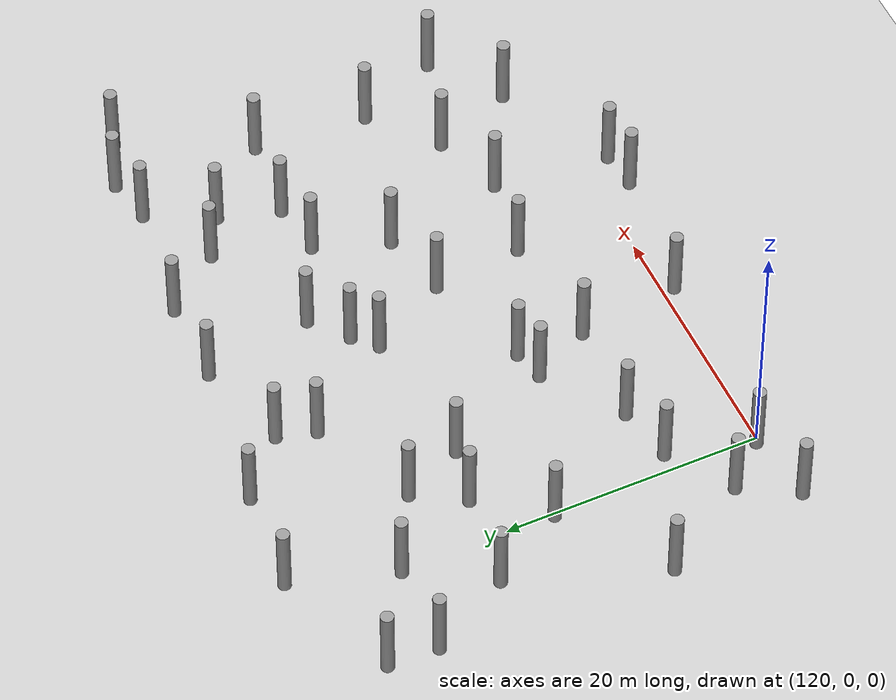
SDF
<sdf version="1.5">
 <world name="circle">
  <model name="ground">
   <static>1</static>
   <link name="link">
    <collision name="collision">
     <geometry><plane><normal>0 0 1</normal><size>100 100</size></plane></geometry>
     <surface><friction><ode><mu>100</mu><mu2>50</mu2></ode></friction></surface>
    </collision>
    <visual name="visual">
     <cast_shadows>0</cast_shadows>
     <geometry><plane><normal>0 0 1</normal><size>100 100</size></plane></geometry>
     <material>
      <script><uri>file://media/materials/scripts/gazebo.material</uri><name>Gazebo/Grey</name></script>
     </material>
    </visual>
    <velocity_decay><linear>0</linear><angular>0</angular></velocity_decay>
   </link>
  </model>
  <model name="unit_cylinder_186">
   <pose>114.04623257 -0.670646599404 3 3e-06 4e-06 -0</pose>
   <static>1</static>
   <self_collide>1</self_collide>
   <link name="link">
    <inertial>
     <mass>1</mass>
     <inertia><ixx>0.145833</ixx><ixy>0</ixy><ixz>0</ixz><iyy>0.145833</iyy><iyz>0</iyz><izz>0.125</izz></inertia>
    </inertial>
    <collision name="collision">
     <geometry><cylinder><radius>0.5</radius><length>6</length></cylinder></geometry>
    </collision>
    <visual name="visual">
     <geometry><cylinder><radius>0.5</radius><length>6</length></cylinder></geometry>
     <material>
      <script><name>Gazebo/Grey</name><uri>file://media/materials/scripts/gazebo.material</uri></script>
     </material>
    </visual>
    <collision name="cyl_collision">
     <geometry><cylinder><radius>0.5</radius><length>6</length></cylinder></geometry>
    </collision>
    <sensor name="my_contact" type="contact">
     <contact><collision>cyl_collision</collision></contact>
     <update_rate>5</update_rate>
    </sensor>
   </link>
  </model>
  <model name="unit_cylinder_187">
   <pose>116.504684851 3.52285899328 3 3e-06 4e-06 -0</pose>
   <static>1</static>
   <self_collide>1</self_collide>
   <link name="link">
    <inertial>
     <mass>1</mass>
     <inertia><ixx>0.145833</ixx><ixy>0</ixy><ixz>0</ixz><iyy>0.145833</iyy><iyz>0</iyz><izz>0.125</izz></inertia>
    </inertial>
    <collision name="collision">
     <geometry><cylinder><radius>0.5</radius><length>6</length></cylinder></geometry>
    </collision>
    <visual name="visual">
     <geometry><cylinder><radius>0.5</radius><length>6</length></cylinder></geometry>
     <material>
      <script><name>Gazebo/Grey</name><uri>file://media/materials/scripts/gazebo.material</uri></script>
     </material>
    </visual>
    <collision name="cyl_collision">
     <geometry><cylinder><radius>0.5</radius><length>6</length></cylinder></geometry>
    </collision>
    <sensor name="my_contact" type="contact">
     <contact><collision>cyl_collision</collision></contact>
     <update_rate>5</update_rate>
    </sensor>
   </link>
  </model>
  <model name="unit_cylinder_188">
   <pose>111.8481659 10.6977558136 3 3e-06 4e-06 -0</pose>
   <static>1</static>
   <self_collide>1</self_collide>
   <link name="link">
    <inertial>
     <mass>1</mass>
     <inertia><ixx>0.145833</ixx><ixy>0</ixy><ixz>0</ixz><iyy>0.145833</iyy><iyz>0</iyz><izz>0.125</izz></inertia>
    </inertial>
    <collision name="collision">
     <geometry><cylinder><radius>0.5</radius><length>6</length></cylinder></geometry>
    </collision>
    <visual name="visual">
     <geometry><cylinder><radius>0.5</radius><length>6</length></cylinder></geometry>
     <material>
      <script><name>Gazebo/Grey</name><uri>file://media/materials/scripts/gazebo.material</uri></script>
     </material>
    </visual>
    <collision name="cyl_collision">
     <geometry><cylinder><radius>0.5</radius><length>6</length></cylinder></geometry>
    </collision>
    <sensor name="my_contact" type="contact">
     <contact><collision>cyl_collision</collision></contact>
     <update_rate>5</update_rate>
    </sensor>
   </link>
  </model>
  <model name="unit_cylinder_189">
   <pose>116.131925766 22.355051356 3 3e-06 4e-06 -0</pose>
   <static>1</static>
   <self_collide>1</self_collide>
   <link name="link">
    <inertial>
     <mass>1</mass>
     <inertia><ixx>0.145833</ixx><ixy>0</ixy><ixz>0</ixz><iyy>0.145833</iyy><iyz>0</iyz><izz>0.125</izz></inertia>
    </inertial>
    <collision name="collision">
     <geometry><cylinder><radius>0.5</radius><length>6</length></cylinder></geometry>
    </collision>
    <visual name="visual">
     <geometry><cylinder><radius>0.5</radius><length>6</length></cylinder></geometry>
     <material>
      <script><name>Gazebo/Grey</name><uri>file://media/materials/scripts/gazebo.material</uri></script>
     </material>
    </visual>
    <collision name="cyl_collision">
     <geometry><cylinder><radius>0.5</radius><length>6</length></cylinder></geometry>
    </collision>
    <sensor name="my_contact" type="contact">
     <contact><collision>cyl_collision</collision></contact>
     <update_rate>5</update_rate>
    </sensor>
   </link>
  </model>
  <model name="unit_cylinder_190">
   <pose>112.690546598 28.7296796756 3 3e-06 4e-06 -0</pose>
   <static>1</static>
   <self_collide>1</self_collide>
   <link name="link">
    <inertial>
     <mass>1</mass>
     <inertia><ixx>0.145833</ixx><ixy>0</ixy><ixz>0</ixz><iyy>0.145833</iyy><iyz>0</iyz><izz>0.125</izz></inertia>
    </inertial>
    <collision name="collision">
     <geometry><cylinder><radius>0.5</radius><length>6</length></cylinder></geometry>
    </collision>
    <visual name="visual">
     <geometry><cylinder><radius>0.5</radius><length>6</length></cylinder></geometry>
     <material>
      <script><name>Gazebo/Grey</name><uri>file://media/materials/scripts/gazebo.material</uri></script>
     </material>
    </visual>
    <collision name="cyl_collision">
     <geometry><cylinder><radius>0.5</radius><length>6</length></cylinder></geometry>
    </collision>
    <sensor name="my_contact" type="contact">
     <contact><collision>cyl_collision</collision></contact>
     <update_rate>5</update_rate>
    </sensor>
   </link>
  </model>
  <model name="unit_cylinder_191">
   <pose>112.849366053 32.6587938251 3 3e-06 4e-06 -0</pose>
   <static>1</static>
   <self_collide>1</self_collide>
   <link name="link">
    <inertial>
     <mass>1</mass>
     <inertia><ixx>0.145833</ixx><ixy>0</ixy><ixz>0</ixz><iyy>0.145833</iyy><iyz>0</iyz><izz>0.125</izz></inertia>
    </inertial>
    <collision name="collision">
     <geometry><cylinder><radius>0.5</radius><length>6</length></cylinder></geometry>
    </collision>
    <visual name="visual">
     <geometry><cylinder><radius>0.5</radius><length>6</length></cylinder></geometry>
     <material>
      <script><name>Gazebo/Grey</name><uri>file://media/materials/scripts/gazebo.material</uri></script>
     </material>
    </visual>
    <collision name="cyl_collision">
     <geometry><cylinder><radius>0.5</radius><length>6</length></cylinder></geometry>
    </collision>
    <sensor name="my_contact" type="contact">
     <contact><collision>cyl_collision</collision></contact>
     <update_rate>5</update_rate>
    </sensor>
   </link>
  </model>
  <model name="unit_cylinder_198">
   <pose>119.573769569 0.232116422597 3 3e-06 4e-06 -0</pose>
   <static>1</static>
   <self_collide>1</self_collide>
   <link name="link">
    <inertial>
     <mass>1</mass>
     <inertia><ixx>0.145833</ixx><ixy>0</ixy><ixz>0</ixz><iyy>0.145833</iyy><iyz>0</iyz><izz>0.125</izz></inertia>
    </inertial>
    <collision name="collision">
     <geometry><cylinder><radius>0.5</radius><length>6</length></cylinder></geometry>
    </collision>
    <visual name="visual">
     <geometry><cylinder><radius>0.5</radius><length>6</length></cylinder></geometry>
     <material>
      <script><name>Gazebo/Grey</name><uri>file://media/materials/scripts/gazebo.material</uri></script>
     </material>
    </visual>
    <collision name="cyl_collision">
     <geometry><cylinder><radius>0.5</radius><length>6</length></cylinder></geometry>
    </collision>
    <sensor name="my_contact" type="contact">
     <contact><collision>cyl_collision</collision></contact>
     <update_rate>5</update_rate>
    </sensor>
   </link>
  </model>
  <model name="unit_cylinder_199">
   <pose>121.381178813 6.77674367708 3 3e-06 4e-06 -0</pose>
   <static>1</static>
   <self_collide>1</self_collide>
   <link name="link">
    <inertial>
     <mass>1</mass>
     <inertia><ixx>0.145833</ixx><ixy>0</ixy><ixz>0</ixz><iyy>0.145833</iyy><iyz>0</iyz><izz>0.125</izz></inertia>
    </inertial>
    <collision name="collision">
     <geometry><cylinder><radius>0.5</radius><length>6</length></cylinder></geometry>
    </collision>
    <visual name="visual">
     <geometry><cylinder><radius>0.5</radius><length>6</length></cylinder></geometry>
     <material>
      <script><name>Gazebo/Grey</name><uri>file://media/materials/scripts/gazebo.material</uri></script>
     </material>
    </visual>
    <collision name="cyl_collision">
     <geometry><cylinder><radius>0.5</radius><length>6</length></cylinder></geometry>
    </collision>
    <sensor name="my_contact" type="contact">
     <contact><collision>cyl_collision</collision></contact>
     <update_rate>5</update_rate>
    </sensor>
   </link>
  </model>
  <model name="unit_cylinder_200">
   <pose>119.771985402 16.3387912772 3 3e-06 4e-06 -0</pose>
   <static>1</static>
   <self_collide>1</self_collide>
   <link name="link">
    <inertial>
     <mass>1</mass>
     <inertia><ixx>0.145833</ixx><ixy>0</ixy><ixz>0</ixz><iyy>0.145833</iyy><iyz>0</iyz><izz>0.125</izz></inertia>
    </inertial>
    <collision name="collision">
     <geometry><cylinder><radius>0.5</radius><length>6</length></cylinder></geometry>
    </collision>
    <visual name="visual">
     <geometry><cylinder><radius>0.5</radius><length>6</length></cylinder></geometry>
     <material>
      <script><name>Gazebo/Grey</name><uri>file://media/materials/scripts/gazebo.material</uri></script>
     </material>
    </visual>
    <collision name="cyl_collision">
     <geometry><cylinder><radius>0.5</radius><length>6</length></cylinder></geometry>
    </collision>
    <sensor name="my_contact" type="contact">
     <contact><collision>cyl_collision</collision></contact>
     <update_rate>5</update_rate>
    </sensor>
   </link>
  </model>
  <model name="unit_cylinder_201">
   <pose>123.561028598 21.3025298335 3 3e-06 4e-06 -0</pose>
   <static>1</static>
   <self_collide>1</self_collide>
   <link name="link">
    <inertial>
     <mass>1</mass>
     <inertia><ixx>0.145833</ixx><ixy>0</ixy><ixz>0</ixz><iyy>0.145833</iyy><iyz>0</iyz><izz>0.125</izz></inertia>
    </inertial>
    <collision name="collision">
     <geometry><cylinder><radius>0.5</radius><length>6</length></cylinder></geometry>
    </collision>
    <visual name="visual">
     <geometry><cylinder><radius>0.5</radius><length>6</length></cylinder></geometry>
     <material>
      <script><name>Gazebo/Grey</name><uri>file://media/materials/scripts/gazebo.material</uri></script>
     </material>
    </visual>
    <collision name="cyl_collision">
     <geometry><cylinder><radius>0.5</radius><length>6</length></cylinder></geometry>
    </collision>
    <sensor name="my_contact" type="contact">
     <contact><collision>cyl_collision</collision></contact>
     <update_rate>5</update_rate>
    </sensor>
   </link>
  </model>
  <model name="unit_cylinder_202">
   <pose>119.861381067 28.3513563315 3 3e-06 4e-06 -0</pose>
   <static>1</static>
   <self_collide>1</self_collide>
   <link name="link">
    <inertial>
     <mass>1</mass>
     <inertia><ixx>0.145833</ixx><ixy>0</ixy><ixz>0</ixz><iyy>0.145833</iyy><iyz>0</iyz><izz>0.125</izz></inertia>
    </inertial>
    <collision name="collision">
     <geometry><cylinder><radius>0.5</radius><length>6</length></cylinder></geometry>
    </collision>
    <visual name="visual">
     <geometry><cylinder><radius>0.5</radius><length>6</length></cylinder></geometry>
     <material>
      <script><name>Gazebo/Grey</name><uri>file://media/materials/scripts/gazebo.material</uri></script>
     </material>
    </visual>
    <collision name="cyl_collision">
     <geometry><cylinder><radius>0.5</radius><length>6</length></cylinder></geometry>
    </collision>
    <sensor name="my_contact" type="contact">
     <contact><collision>cyl_collision</collision></contact>
     <update_rate>5</update_rate>
    </sensor>
   </link>
  </model>
  <model name="unit_cylinder_203">
   <pose>122.421605274 36.3046957131 3 3e-06 4e-06 -0</pose>
   <static>1</static>
   <self_collide>1</self_collide>
   <link name="link">
    <inertial>
     <mass>1</mass>
     <inertia><ixx>0.145833</ixx><ixy>0</ixy><ixz>0</ixz><iyy>0.145833</iyy><iyz>0</iyz><izz>0.125</izz></inertia>
    </inertial>
    <collision name="collision">
     <geometry><cylinder><radius>0.5</radius><length>6</length></cylinder></geometry>
    </collision>
    <visual name="visual">
     <geometry><cylinder><radius>0.5</radius><length>6</length></cylinder></geometry>
     <material>
      <script><name>Gazebo/Grey</name><uri>file://media/materials/scripts/gazebo.material</uri></script>
     </material>
    </visual>
    <collision name="cyl_collision">
     <geometry><cylinder><radius>0.5</radius><length>6</length></cylinder></geometry>
    </collision>
    <sensor name="my_contact" type="contact">
     <contact><collision>cyl_collision</collision></contact>
     <update_rate>5</update_rate>
    </sensor>
   </link>
  </model>
  <model name="unit_cylinder_211">
   <pose>125.883847739 7.64397480241 3 3e-06 4e-06 -0</pose>
   <static>1</static>
   <self_collide>1</self_collide>
   <link name="link">
    <inertial>
     <mass>1</mass>
     <inertia><ixx>0.145833</ixx><ixy>0</ixy><ixz>0</ixz><iyy>0.145833</iyy><iyz>0</iyz><izz>0.125</izz></inertia>
    </inertial>
    <collision name="collision">
     <geometry><cylinder><radius>0.5</radius><length>6</length></cylinder></geometry>
    </collision>
    <visual name="visual">
     <geometry><cylinder><radius>0.5</radius><length>6</length></cylinder></geometry>
     <material>
      <script><name>Gazebo/Grey</name><uri>file://media/materials/scripts/gazebo.material</uri></script>
     </material>
    </visual>
    <collision name="cyl_collision">
     <geometry><cylinder><radius>0.5</radius><length>6</length></cylinder></geometry>
    </collision>
    <sensor name="my_contact" type="contact">
     <contact><collision>cyl_collision</collision></contact>
     <update_rate>5</update_rate>
    </sensor>
   </link>
  </model>
  <model name="unit_cylinder_212">
   <pose>131.741342921 11.7893332246 3 3e-06 4e-06 -0</pose>
   <static>1</static>
   <self_collide>1</self_collide>
   <link name="link">
    <inertial>
     <mass>1</mass>
     <inertia><ixx>0.145833</ixx><ixy>0</ixy><ixz>0</ixz><iyy>0.145833</iyy><iyz>0</iyz><izz>0.125</izz></inertia>
    </inertial>
    <collision name="collision">
     <geometry><cylinder><radius>0.5</radius><length>6</length></cylinder></geometry>
    </collision>
    <visual name="visual">
     <geometry><cylinder><radius>0.5</radius><length>6</length></cylinder></geometry>
     <material>
      <script><name>Gazebo/Grey</name><uri>file://media/materials/scripts/gazebo.material</uri></script>
     </material>
    </visual>
    <collision name="cyl_collision">
     <geometry><cylinder><radius>0.5</radius><length>6</length></cylinder></geometry>
    </collision>
    <sensor name="my_contact" type="contact">
     <contact><collision>cyl_collision</collision></contact>
     <update_rate>5</update_rate>
    </sensor>
   </link>
  </model>
  <model name="unit_cylinder_213">
   <pose>127.977320157 20.2722941342 3 3e-06 4e-06 -0</pose>
   <static>1</static>
   <self_collide>1</self_collide>
   <link name="link">
    <inertial>
     <mass>1</mass>
     <inertia><ixx>0.145833</ixx><ixy>0</ixy><ixz>0</ixz><iyy>0.145833</iyy><iyz>0</iyz><izz>0.125</izz></inertia>
    </inertial>
    <collision name="collision">
     <geometry><cylinder><radius>0.5</radius><length>6</length></cylinder></geometry>
    </collision>
    <visual name="visual">
     <geometry><cylinder><radius>0.5</radius><length>6</length></cylinder></geometry>
     <material>
      <script><name>Gazebo/Grey</name><uri>file://media/materials/scripts/gazebo.material</uri></script>
     </material>
    </visual>
    <collision name="cyl_collision">
     <geometry><cylinder><radius>0.5</radius><length>6</length></cylinder></geometry>
    </collision>
    <sensor name="my_contact" type="contact">
     <contact><collision>cyl_collision</collision></contact>
     <update_rate>5</update_rate>
    </sensor>
   </link>
  </model>
  <model name="unit_cylinder_214">
   <pose>125.865634097 25.0300509246 3 3e-06 4e-06 -0</pose>
   <static>1</static>
   <self_collide>1</self_collide>
   <link name="link">
    <inertial>
     <mass>1</mass>
     <inertia><ixx>0.145833</ixx><ixy>0</ixy><ixz>0</ixz><iyy>0.145833</iyy><iyz>0</iyz><izz>0.125</izz></inertia>
    </inertial>
    <collision name="collision">
     <geometry><cylinder><radius>0.5</radius><length>6</length></cylinder></geometry>
    </collision>
    <visual name="visual">
     <geometry><cylinder><radius>0.5</radius><length>6</length></cylinder></geometry>
     <material>
      <script><name>Gazebo/Grey</name><uri>file://media/materials/scripts/gazebo.material</uri></script>
     </material>
    </visual>
    <collision name="cyl_collision">
     <geometry><cylinder><radius>0.5</radius><length>6</length></cylinder></geometry>
    </collision>
    <sensor name="my_contact" type="contact">
     <contact><collision>cyl_collision</collision></contact>
     <update_rate>5</update_rate>
    </sensor>
   </link>
  </model>
  <model name="unit_cylinder_215">
   <pose>130.383169023 35.4549168731 3 3e-06 4e-06 -0</pose>
   <static>1</static>
   <self_collide>1</self_collide>
   <link name="link">
    <inertial>
     <mass>1</mass>
     <inertia><ixx>0.145833</ixx><ixy>0</ixy><ixz>0</ixz><iyy>0.145833</iyy><iyz>0</iyz><izz>0.125</izz></inertia>
    </inertial>
    <collision name="collision">
     <geometry><cylinder><radius>0.5</radius><length>6</length></cylinder></geometry>
    </collision>
    <visual name="visual">
     <geometry><cylinder><radius>0.5</radius><length>6</length></cylinder></geometry>
     <material>
      <script><name>Gazebo/Grey</name><uri>file://media/materials/scripts/gazebo.material</uri></script>
     </material>
    </visual>
    <collision name="cyl_collision">
     <geometry><cylinder><radius>0.5</radius><length>6</length></cylinder></geometry>
    </collision>
    <sensor name="my_contact" type="contact">
     <contact><collision>cyl_collision</collision></contact>
     <update_rate>5</update_rate>
    </sensor>
   </link>
  </model>
  <model name="unit_cylinder_222">
   <pose>135.057741474 -0.878188792689 3 3e-06 4e-06 -0</pose>
   <static>1</static>
   <self_collide>1</self_collide>
   <link name="link">
    <inertial>
     <mass>1</mass>
     <inertia><ixx>0.145833</ixx><ixy>0</ixy><ixz>0</ixz><iyy>0.145833</iyy><iyz>0</iyz><izz>0.125</izz></inertia>
    </inertial>
    <collision name="collision">
     <geometry><cylinder><radius>0.5</radius><length>6</length></cylinder></geometry>
    </collision>
    <visual name="visual">
     <geometry><cylinder><radius>0.5</radius><length>6</length></cylinder></geometry>
     <material>
      <script><name>Gazebo/Grey</name><uri>file://media/materials/scripts/gazebo.material</uri></script>
     </material>
    </visual>
    <collision name="cyl_collision">
     <geometry><cylinder><radius>0.5</radius><length>6</length></cylinder></geometry>
    </collision>
    <sensor name="my_contact" type="contact">
     <contact><collision>cyl_collision</collision></contact>
     <update_rate>5</update_rate>
    </sensor>
   </link>
  </model>
  <model name="unit_cylinder_223">
   <pose>134.018247393 7.18166143981 3 3e-06 4e-06 -0</pose>
   <static>1</static>
   <self_collide>1</self_collide>
   <link name="link">
    <inertial>
     <mass>1</mass>
     <inertia><ixx>0.145833</ixx><ixy>0</ixy><ixz>0</ixz><iyy>0.145833</iyy><iyz>0</iyz><izz>0.125</izz></inertia>
    </inertial>
    <collision name="collision">
     <geometry><cylinder><radius>0.5</radius><length>6</length></cylinder></geometry>
    </collision>
    <visual name="visual">
     <geometry><cylinder><radius>0.5</radius><length>6</length></cylinder></geometry>
     <material>
      <script><name>Gazebo/Grey</name><uri>file://media/materials/scripts/gazebo.material</uri></script>
     </material>
    </visual>
    <collision name="cyl_collision">
     <geometry><cylinder><radius>0.5</radius><length>6</length></cylinder></geometry>
    </collision>
    <sensor name="my_contact" type="contact">
     <contact><collision>cyl_collision</collision></contact>
     <update_rate>5</update_rate>
    </sensor>
   </link>
  </model>
  <model name="unit_cylinder_224">
   <pose>134.228063658 12.3709862652 3 3e-06 4e-06 -0</pose>
   <static>1</static>
   <self_collide>1</self_collide>
   <link name="link">
    <inertial>
     <mass>1</mass>
     <inertia><ixx>0.145833</ixx><ixy>0</ixy><ixz>0</ixz><iyy>0.145833</iyy><iyz>0</iyz><izz>0.125</izz></inertia>
    </inertial>
    <collision name="collision">
     <geometry><cylinder><radius>0.5</radius><length>6</length></cylinder></geometry>
    </collision>
    <visual name="visual">
     <geometry><cylinder><radius>0.5</radius><length>6</length></cylinder></geometry>
     <material>
      <script><name>Gazebo/Grey</name><uri>file://media/materials/scripts/gazebo.material</uri></script>
     </material>
    </visual>
    <collision name="cyl_collision">
     <geometry><cylinder><radius>0.5</radius><length>6</length></cylinder></geometry>
    </collision>
    <sensor name="my_contact" type="contact">
     <contact><collision>cyl_collision</collision></contact>
     <update_rate>5</update_rate>
    </sensor>
   </link>
  </model>
  <model name="unit_cylinder_225">
   <pose>139.212556057 21.2128518129 3 3e-06 4e-06 -0</pose>
   <static>1</static>
   <self_collide>1</self_collide>
   <link name="link">
    <inertial>
     <mass>1</mass>
     <inertia><ixx>0.145833</ixx><ixy>0</ixy><ixz>0</ixz><iyy>0.145833</iyy><iyz>0</iyz><izz>0.125</izz></inertia>
    </inertial>
    <collision name="collision">
     <geometry><cylinder><radius>0.5</radius><length>6</length></cylinder></geometry>
    </collision>
    <visual name="visual">
     <geometry><cylinder><radius>0.5</radius><length>6</length></cylinder></geometry>
     <material>
      <script><name>Gazebo/Grey</name><uri>file://media/materials/scripts/gazebo.material</uri></script>
     </material>
    </visual>
    <collision name="cyl_collision">
     <geometry><cylinder><radius>0.5</radius><length>6</length></cylinder></geometry>
    </collision>
    <sensor name="my_contact" type="contact">
     <contact><collision>cyl_collision</collision></contact>
     <update_rate>5</update_rate>
    </sensor>
   </link>
  </model>
  <model name="unit_cylinder_226">
   <pose>133.875096395 28.5992869656 3 3e-06 4e-06 -0</pose>
   <static>1</static>
   <self_collide>1</self_collide>
   <link name="link">
    <inertial>
     <mass>1</mass>
     <inertia><ixx>0.145833</ixx><ixy>0</ixy><ixz>0</ixz><iyy>0.145833</iyy><iyz>0</iyz><izz>0.125</izz></inertia>
    </inertial>
    <collision name="collision">
     <geometry><cylinder><radius>0.5</radius><length>6</length></cylinder></geometry>
    </collision>
    <visual name="visual">
     <geometry><cylinder><radius>0.5</radius><length>6</length></cylinder></geometry>
     <material>
      <script><name>Gazebo/Grey</name><uri>file://media/materials/scripts/gazebo.material</uri></script>
     </material>
    </visual>
    <collision name="cyl_collision">
     <geometry><cylinder><radius>0.5</radius><length>6</length></cylinder></geometry>
    </collision>
    <sensor name="my_contact" type="contact">
     <contact><collision>cyl_collision</collision></contact>
     <update_rate>5</update_rate>
    </sensor>
   </link>
  </model>
  <model name="unit_cylinder_227">
   <pose>134.736275328 31.5501379428 3 3e-06 4e-06 -0</pose>
   <static>1</static>
   <self_collide>1</self_collide>
   <link name="link">
    <inertial>
     <mass>1</mass>
     <inertia><ixx>0.145833</ixx><ixy>0</ixy><ixz>0</ixz><iyy>0.145833</iyy><iyz>0</iyz><izz>0.125</izz></inertia>
    </inertial>
    <collision name="collision">
     <geometry><cylinder><radius>0.5</radius><length>6</length></cylinder></geometry>
    </collision>
    <visual name="visual">
     <geometry><cylinder><radius>0.5</radius><length>6</length></cylinder></geometry>
     <material>
      <script><name>Gazebo/Grey</name><uri>file://media/materials/scripts/gazebo.material</uri></script>
     </material>
    </visual>
    <collision name="cyl_collision">
     <geometry><cylinder><radius>0.5</radius><length>6</length></cylinder></geometry>
    </collision>
    <sensor name="my_contact" type="contact">
     <contact><collision>cyl_collision</collision></contact>
     <update_rate>5</update_rate>
    </sensor>
   </link>
  </model>
  <model name="unit_cylinder_234">
   <pose>145.625152186 -2.4016919363 3 3e-06 4e-06 -0</pose>
   <static>1</static>
   <self_collide>1</self_collide>
   <link name="link">
    <inertial>
     <mass>1</mass>
     <inertia><ixx>0.145833</ixx><ixy>0</ixy><ixz>0</ixz><iyy>0.145833</iyy><iyz>0</iyz><izz>0.125</izz></inertia>
    </inertial>
    <collision name="collision">
     <geometry><cylinder><radius>0.5</radius><length>6</length></cylinder></geometry>
    </collision>
    <visual name="visual">
     <geometry><cylinder><radius>0.5</radius><length>6</length></cylinder></geometry>
     <material>
      <script><name>Gazebo/Grey</name><uri>file://media/materials/scripts/gazebo.material</uri></script>
     </material>
    </visual>
    <collision name="cyl_collision">
     <geometry><cylinder><radius>0.5</radius><length>6</length></cylinder></geometry>
    </collision>
    <sensor name="my_contact" type="contact">
     <contact><collision>cyl_collision</collision></contact>
     <update_rate>5</update_rate>
    </sensor>
   </link>
  </model>
  <model name="unit_cylinder_235">
   <pose>143.255935077 8.06396795035 3 3e-06 4e-06 -0</pose>
   <static>1</static>
   <self_collide>1</self_collide>
   <link name="link">
    <inertial>
     <mass>1</mass>
     <inertia><ixx>0.145833</ixx><ixy>0</ixy><ixz>0</ixz><iyy>0.145833</iyy><iyz>0</iyz><izz>0.125</izz></inertia>
    </inertial>
    <collision name="collision">
     <geometry><cylinder><radius>0.5</radius><length>6</length></cylinder></geometry>
    </collision>
    <visual name="visual">
     <geometry><cylinder><radius>0.5</radius><length>6</length></cylinder></geometry>
     <material>
      <script><name>Gazebo/Grey</name><uri>file://media/materials/scripts/gazebo.material</uri></script>
     </material>
    </visual>
    <collision name="cyl_collision">
     <geometry><cylinder><radius>0.5</radius><length>6</length></cylinder></geometry>
    </collision>
    <sensor name="my_contact" type="contact">
     <contact><collision>cyl_collision</collision></contact>
     <update_rate>5</update_rate>
    </sensor>
   </link>
  </model>
  <model name="unit_cylinder_236">
   <pose>142.567124178 15.0234591676 3 3e-06 4e-06 -0</pose>
   <static>1</static>
   <self_collide>1</self_collide>
   <link name="link">
    <inertial>
     <mass>1</mass>
     <inertia><ixx>0.145833</ixx><ixy>0</ixy><ixz>0</ixz><iyy>0.145833</iyy><iyz>0</iyz><izz>0.125</izz></inertia>
    </inertial>
    <collision name="collision">
     <geometry><cylinder><radius>0.5</radius><length>6</length></cylinder></geometry>
    </collision>
    <visual name="visual">
     <geometry><cylinder><radius>0.5</radius><length>6</length></cylinder></geometry>
     <material>
      <script><name>Gazebo/Grey</name><uri>file://media/materials/scripts/gazebo.material</uri></script>
     </material>
    </visual>
    <collision name="cyl_collision">
     <geometry><cylinder><radius>0.5</radius><length>6</length></cylinder></geometry>
    </collision>
    <sensor name="my_contact" type="contact">
     <contact><collision>cyl_collision</collision></contact>
     <update_rate>5</update_rate>
    </sensor>
   </link>
  </model>
  <model name="unit_cylinder_237">
   <pose>140.867614643 22.8048895006 3 3e-06 4e-06 -0</pose>
   <static>1</static>
   <self_collide>1</self_collide>
   <link name="link">
    <inertial>
     <mass>1</mass>
     <inertia><ixx>0.145833</ixx><ixy>0</ixy><ixz>0</ixz><iyy>0.145833</iyy><iyz>0</iyz><izz>0.125</izz></inertia>
    </inertial>
    <collision name="collision">
     <geometry><cylinder><radius>0.5</radius><length>6</length></cylinder></geometry>
    </collision>
    <visual name="visual">
     <geometry><cylinder><radius>0.5</radius><length>6</length></cylinder></geometry>
     <material>
      <script><name>Gazebo/Grey</name><uri>file://media/materials/scripts/gazebo.material</uri></script>
     </material>
    </visual>
    <collision name="cyl_collision">
     <geometry><cylinder><radius>0.5</radius><length>6</length></cylinder></geometry>
    </collision>
    <sensor name="my_contact" type="contact">
     <contact><collision>cyl_collision</collision></contact>
     <update_rate>5</update_rate>
    </sensor>
   </link>
  </model>
  <model name="unit_cylinder_238">
   <pose>143.631553353 25.0603674039 3 3e-06 4e-06 -0</pose>
   <static>1</static>
   <self_collide>1</self_collide>
   <link name="link">
    <inertial>
     <mass>1</mass>
     <inertia><ixx>0.145833</ixx><ixy>0</ixy><ixz>0</ixz><iyy>0.145833</iyy><iyz>0</iyz><izz>0.125</izz></inertia>
    </inertial>
    <collision name="collision">
     <geometry><cylinder><radius>0.5</radius><length>6</length></cylinder></geometry>
    </collision>
    <visual name="visual">
     <geometry><cylinder><radius>0.5</radius><length>6</length></cylinder></geometry>
     <material>
      <script><name>Gazebo/Grey</name><uri>file://media/materials/scripts/gazebo.material</uri></script>
     </material>
    </visual>
    <collision name="cyl_collision">
     <geometry><cylinder><radius>0.5</radius><length>6</length></cylinder></geometry>
    </collision>
    <sensor name="my_contact" type="contact">
     <contact><collision>cyl_collision</collision></contact>
     <update_rate>5</update_rate>
    </sensor>
   </link>
  </model>
  <model name="unit_cylinder_239">
   <pose>142.102833056 33.6138497329 3 3e-06 4e-06 -0</pose>
   <static>1</static>
   <self_collide>1</self_collide>
   <link name="link">
    <inertial>
     <mass>1</mass>
     <inertia><ixx>0.145833</ixx><ixy>0</ixy><ixz>0</ixz><iyy>0.145833</iyy><iyz>0</iyz><izz>0.125</izz></inertia>
    </inertial>
    <collision name="collision">
     <geometry><cylinder><radius>0.5</radius><length>6</length></cylinder></geometry>
    </collision>
    <visual name="visual">
     <geometry><cylinder><radius>0.5</radius><length>6</length></cylinder></geometry>
     <material>
      <script><name>Gazebo/Grey</name><uri>file://media/materials/scripts/gazebo.material</uri></script>
     </material>
    </visual>
    <collision name="cyl_collision">
     <geometry><cylinder><radius>0.5</radius><length>6</length></cylinder></geometry>
    </collision>
    <sensor name="my_contact" type="contact">
     <contact><collision>cyl_collision</collision></contact>
     <update_rate>5</update_rate>
    </sensor>
   </link>
  </model>
  <model name="unit_cylinder_246">
   <pose>148.621154983 -2.05360047486 3 3e-06 4e-06 -0</pose>
   <static>1</static>
   <self_collide>1</self_collide>
   <link name="link">
    <inertial>
     <mass>1</mass>
     <inertia><ixx>0.145833</ixx><ixy>0</ixy><ixz>0</ixz><iyy>0.145833</iyy><iyz>0</iyz><izz>0.125</izz></inertia>
    </inertial>
    <collision name="collision">
     <geometry><cylinder><radius>0.5</radius><length>6</length></cylinder></geometry>
    </collision>
    <visual name="visual">
     <geometry><cylinder><radius>0.5</radius><length>6</length></cylinder></geometry>
     <material>
      <script><name>Gazebo/Grey</name><uri>file://media/materials/scripts/gazebo.material</uri></script>
     </material>
    </visual>
    <collision name="cyl_collision">
     <geometry><cylinder><radius>0.5</radius><length>6</length></cylinder></geometry>
    </collision>
    <sensor name="my_contact" type="contact">
     <contact><collision>cyl_collision</collision></contact>
     <update_rate>5</update_rate>
    </sensor>
   </link>
  </model>
  <model name="unit_cylinder_247">
   <pose>149.659110885 6.93224375515 3 3e-06 4e-06 -0</pose>
   <static>1</static>
   <self_collide>1</self_collide>
   <link name="link">
    <inertial>
     <mass>1</mass>
     <inertia><ixx>0.145833</ixx><ixy>0</ixy><ixz>0</ixz><iyy>0.145833</iyy><iyz>0</iyz><izz>0.125</izz></inertia>
    </inertial>
    <collision name="collision">
     <geometry><cylinder><radius>0.5</radius><length>6</length></cylinder></geometry>
    </collision>
    <visual name="visual">
     <geometry><cylinder><radius>0.5</radius><length>6</length></cylinder></geometry>
     <material>
      <script><name>Gazebo/Grey</name><uri>file://media/materials/scripts/gazebo.material</uri></script>
     </material>
    </visual>
    <collision name="cyl_collision">
     <geometry><cylinder><radius>0.5</radius><length>6</length></cylinder></geometry>
    </collision>
    <sensor name="my_contact" type="contact">
     <contact><collision>cyl_collision</collision></contact>
     <update_rate>5</update_rate>
    </sensor>
   </link>
  </model>
  <model name="unit_cylinder_248">
   <pose>147.909413034 16.2716354207 3 3e-06 4e-06 -0</pose>
   <static>1</static>
   <self_collide>1</self_collide>
   <link name="link">
    <inertial>
     <mass>1</mass>
     <inertia><ixx>0.145833</ixx><ixy>0</ixy><ixz>0</ixz><iyy>0.145833</iyy><iyz>0</iyz><izz>0.125</izz></inertia>
    </inertial>
    <collision name="collision">
     <geometry><cylinder><radius>0.5</radius><length>6</length></cylinder></geometry>
    </collision>
    <visual name="visual">
     <geometry><cylinder><radius>0.5</radius><length>6</length></cylinder></geometry>
     <material>
      <script><name>Gazebo/Grey</name><uri>file://media/materials/scripts/gazebo.material</uri></script>
     </material>
    </visual>
    <collision name="cyl_collision">
     <geometry><cylinder><radius>0.5</radius><length>6</length></cylinder></geometry>
    </collision>
    <sensor name="my_contact" type="contact">
     <contact><collision>cyl_collision</collision></contact>
     <update_rate>5</update_rate>
    </sensor>
   </link>
  </model>
  <model name="unit_cylinder_249">
   <pose>149.95308369 21.8561783583 3 3e-06 4e-06 -0</pose>
   <static>1</static>
   <self_collide>1</self_collide>
   <link name="link">
    <inertial>
     <mass>1</mass>
     <inertia><ixx>0.145833</ixx><ixy>0</ixy><ixz>0</ixz><iyy>0.145833</iyy><iyz>0</iyz><izz>0.125</izz></inertia>
    </inertial>
    <collision name="collision">
     <geometry><cylinder><radius>0.5</radius><length>6</length></cylinder></geometry>
    </collision>
    <visual name="visual">
     <geometry><cylinder><radius>0.5</radius><length>6</length></cylinder></geometry>
     <material>
      <script><name>Gazebo/Grey</name><uri>file://media/materials/scripts/gazebo.material</uri></script>
     </material>
    </visual>
    <collision name="cyl_collision">
     <geometry><cylinder><radius>0.5</radius><length>6</length></cylinder></geometry>
    </collision>
    <sensor name="my_contact" type="contact">
     <contact><collision>cyl_collision</collision></contact>
     <update_rate>5</update_rate>
    </sensor>
   </link>
  </model>
  <model name="unit_cylinder_250">
   <pose>152.353139995 28.9650946919 3 3e-06 4e-06 -0</pose>
   <static>1</static>
   <self_collide>1</self_collide>
   <link name="link">
    <inertial>
     <mass>1</mass>
     <inertia><ixx>0.145833</ixx><ixy>0</ixy><ixz>0</ixz><iyy>0.145833</iyy><iyz>0</iyz><izz>0.125</izz></inertia>
    </inertial>
    <collision name="collision">
     <geometry><cylinder><radius>0.5</radius><length>6</length></cylinder></geometry>
    </collision>
    <visual name="visual">
     <geometry><cylinder><radius>0.5</radius><length>6</length></cylinder></geometry>
     <material>
      <script><name>Gazebo/Grey</name><uri>file://media/materials/scripts/gazebo.material</uri></script>
     </material>
    </visual>
    <collision name="cyl_collision">
     <geometry><cylinder><radius>0.5</radius><length>6</length></cylinder></geometry>
    </collision>
    <sensor name="my_contact" type="contact">
     <contact><collision>cyl_collision</collision></contact>
     <update_rate>5</update_rate>
    </sensor>
   </link>
  </model>
  <model name="unit_cylinder_251">
   <pose>148.732083608 33.4998597161 3 3e-06 4e-06 -0</pose>
   <static>1</static>
   <self_collide>1</self_collide>
   <link name="link">
    <inertial>
     <mass>1</mass>
     <inertia><ixx>0.145833</ixx><ixy>0</ixy><ixz>0</ixz><iyy>0.145833</iyy><iyz>0</iyz><izz>0.125</izz></inertia>
    </inertial>
    <collision name="collision">
     <geometry><cylinder><radius>0.5</radius><length>6</length></cylinder></geometry>
    </collision>
    <visual name="visual">
     <geometry><cylinder><radius>0.5</radius><length>6</length></cylinder></geometry>
     <material>
      <script><name>Gazebo/Grey</name><uri>file://media/materials/scripts/gazebo.material</uri></script>
     </material>
    </visual>
    <collision name="cyl_collision">
     <geometry><cylinder><radius>0.5</radius><length>6</length></cylinder></geometry>
    </collision>
    <sensor name="my_contact" type="contact">
     <contact><collision>cyl_collision</collision></contact>
     <update_rate>5</update_rate>
    </sensor>
   </link>
  </model>
  <model name="unit_cylinder_258">
   <pose>157.54411862 2.50727785879 3 3e-06 4e-06 -0</pose>
   <static>1</static>
   <self_collide>1</self_collide>
   <link name="link">
    <inertial>
     <mass>1</mass>
     <inertia><ixx>0.145833</ixx><ixy>0</ixy><ixz>0</ixz><iyy>0.145833</iyy><iyz>0</iyz><izz>0.125</izz></inertia>
    </inertial>
    <collision name="collision">
     <geometry><cylinder><radius>0.5</radius><length>6</length></cylinder></geometry>
    </collision>
    <visual name="visual">
     <geometry><cylinder><radius>0.5</radius><length>6</length></cylinder></geometry>
     <material>
      <script><name>Gazebo/Grey</name><uri>file://media/materials/scripts/gazebo.material</uri></script>
     </material>
    </visual>
    <collision name="cyl_collision">
     <geometry><cylinder><radius>0.5</radius><length>6</length></cylinder></geometry>
    </collision>
    <sensor name="my_contact" type="contact">
     <contact><collision>cyl_collision</collision></contact>
     <update_rate>5</update_rate>
    </sensor>
   </link>
  </model>
  <model name="unit_cylinder_259">
   <pose>155.095932052 8.79896553969 3 3e-06 4e-06 -0</pose>
   <static>1</static>
   <self_collide>1</self_collide>
   <link name="link">
    <inertial>
     <mass>1</mass>
     <inertia><ixx>0.145833</ixx><ixy>0</ixy><ixz>0</ixz><iyy>0.145833</iyy><iyz>0</iyz><izz>0.125</izz></inertia>
    </inertial>
    <collision name="collision">
     <geometry><cylinder><radius>0.5</radius><length>6</length></cylinder></geometry>
    </collision>
    <visual name="visual">
     <geometry><cylinder><radius>0.5</radius><length>6</length></cylinder></geometry>
     <material>
      <script><name>Gazebo/Grey</name><uri>file://media/materials/scripts/gazebo.material</uri></script>
     </material>
    </visual>
    <collision name="cyl_collision">
     <geometry><cylinder><radius>0.5</radius><length>6</length></cylinder></geometry>
    </collision>
    <sensor name="my_contact" type="contact">
     <contact><collision>cyl_collision</collision></contact>
     <update_rate>5</update_rate>
    </sensor>
   </link>
  </model>
  <model name="unit_cylinder_260">
   <pose>160.002493248 12.8985538067 3 3e-06 4e-06 -0</pose>
   <static>1</static>
   <self_collide>1</self_collide>
   <link name="link">
    <inertial>
     <mass>1</mass>
     <inertia><ixx>0.145833</ixx><ixy>0</ixy><ixz>0</ixz><iyy>0.145833</iyy><iyz>0</iyz><izz>0.125</izz></inertia>
    </inertial>
    <collision name="collision">
     <geometry><cylinder><radius>0.5</radius><length>6</length></cylinder></geometry>
    </collision>
    <visual name="visual">
     <geometry><cylinder><radius>0.5</radius><length>6</length></cylinder></geometry>
     <material>
      <script><name>Gazebo/Grey</name><uri>file://media/materials/scripts/gazebo.material</uri></script>
     </material>
    </visual>
    <collision name="cyl_collision">
     <geometry><cylinder><radius>0.5</radius><length>6</length></cylinder></geometry>
    </collision>
    <sensor name="my_contact" type="contact">
     <contact><collision>cyl_collision</collision></contact>
     <update_rate>5</update_rate>
    </sensor>
   </link>
  </model>
  <model name="unit_cylinder_261">
   <pose>154.210891391 22.4275077698 3 3e-06 4e-06 -0</pose>
   <static>1</static>
   <self_collide>1</self_collide>
   <link name="link">
    <inertial>
     <mass>1</mass>
     <inertia><ixx>0.145833</ixx><ixy>0</ixy><ixz>0</ixz><iyy>0.145833</iyy><iyz>0</iyz><izz>0.125</izz></inertia>
    </inertial>
    <collision name="collision">
     <geometry><cylinder><radius>0.5</radius><length>6</length></cylinder></geometry>
    </collision>
    <visual name="visual">
     <geometry><cylinder><radius>0.5</radius><length>6</length></cylinder></geometry>
     <material>
      <script><name>Gazebo/Grey</name><uri>file://media/materials/scripts/gazebo.material</uri></script>
     </material>
    </visual>
    <collision name="cyl_collision">
     <geometry><cylinder><radius>0.5</radius><length>6</length></cylinder></geometry>
    </collision>
    <sensor name="my_contact" type="contact">
     <contact><collision>cyl_collision</collision></contact>
     <update_rate>5</update_rate>
    </sensor>
   </link>
  </model>
  <model name="unit_cylinder_262">
   <pose>155.60862899 27.0890723078 3 3e-06 4e-06 -0</pose>
   <static>1</static>
   <self_collide>1</self_collide>
   <link name="link">
    <inertial>
     <mass>1</mass>
     <inertia><ixx>0.145833</ixx><ixy>0</ixy><ixz>0</ixz><iyy>0.145833</iyy><iyz>0</iyz><izz>0.125</izz></inertia>
    </inertial>
    <collision name="collision">
     <geometry><cylinder><radius>0.5</radius><length>6</length></cylinder></geometry>
    </collision>
    <visual name="visual">
     <geometry><cylinder><radius>0.5</radius><length>6</length></cylinder></geometry>
     <material>
      <script><name>Gazebo/Grey</name><uri>file://media/materials/scripts/gazebo.material</uri></script>
     </material>
    </visual>
    <collision name="cyl_collision">
     <geometry><cylinder><radius>0.5</radius><length>6</length></cylinder></geometry>
    </collision>
    <sensor name="my_contact" type="contact">
     <contact><collision>cyl_collision</collision></contact>
     <update_rate>5</update_rate>
    </sensor>
   </link>
  </model>
  <model name="unit_cylinder_263">
   <pose>158.131782009 32.0464759173 3 3e-06 4e-06 -0</pose>
   <static>1</static>
   <self_collide>1</self_collide>
   <link name="link">
    <inertial>
     <mass>1</mass>
     <inertia><ixx>0.145833</ixx><ixy>0</ixy><ixz>0</ixz><iyy>0.145833</iyy><iyz>0</iyz><izz>0.125</izz></inertia>
    </inertial>
    <collision name="collision">
     <geometry><cylinder><radius>0.5</radius><length>6</length></cylinder></geometry>
    </collision>
    <visual name="visual">
     <geometry><cylinder><radius>0.5</radius><length>6</length></cylinder></geometry>
     <material>
      <script><name>Gazebo/Grey</name><uri>file://media/materials/scripts/gazebo.material</uri></script>
     </material>
    </visual>
    <collision name="cyl_collision">
     <geometry><cylinder><radius>0.5</radius><length>6</length></cylinder></geometry>
    </collision>
    <sensor name="my_contact" type="contact">
     <contact><collision>cyl_collision</collision></contact>
     <update_rate>5</update_rate>
    </sensor>
   </link>
  </model>
  <model name="unit_cylinder_271">
   <pose>162.846557342 6.35211656955 3 3e-06 4e-06 -0</pose>
   <static>1</static>
   <self_collide>1</self_collide>
   <link name="link">
    <inertial>
     <mass>1</mass>
     <inertia><ixx>0.145833</ixx><ixy>0</ixy><ixz>0</ixz><iyy>0.145833</iyy><iyz>0</iyz><izz>0.125</izz></inertia>
    </inertial>
    <collision name="collision">
     <geometry><cylinder><radius>0.5</radius><length>6</length></cylinder></geometry>
    </collision>
    <visual name="visual">
     <geometry><cylinder><radius>0.5</radius><length>6</length></cylinder></geometry>
     <material>
      <script><name>Gazebo/Grey</name><uri>file://media/materials/scripts/gazebo.material</uri></script>
     </material>
    </visual>
    <collision name="cyl_collision">
     <geometry><cylinder><radius>0.5</radius><length>6</length></cylinder></geometry>
    </collision>
    <sensor name="my_contact" type="contact">
     <contact><collision>cyl_collision</collision></contact>
     <update_rate>5</update_rate>
    </sensor>
   </link>
  </model>
  <model name="unit_cylinder_273">
   <pose>160.702640242 21.7109563086 3 3e-06 4e-06 -0</pose>
   <static>1</static>
   <self_collide>1</self_collide>
   <link name="link">
    <inertial>
     <mass>1</mass>
     <inertia><ixx>0.145833</ixx><ixy>0</ixy><ixz>0</ixz><iyy>0.145833</iyy><iyz>0</iyz><izz>0.125</izz></inertia>
    </inertial>
    <collision name="collision">
     <geometry><cylinder><radius>0.5</radius><length>6</length></cylinder></geometry>
    </collision>
    <visual name="visual">
     <geometry><cylinder><radius>0.5</radius><length>6</length></cylinder></geometry>
     <material>
      <script><name>Gazebo/Grey</name><uri>file://media/materials/scripts/gazebo.material</uri></script>
     </material>
    </visual>
    <collision name="cyl_collision">
     <geometry><cylinder><radius>0.5</radius><length>6</length></cylinder></geometry>
    </collision>
    <sensor name="my_contact" type="contact">
     <contact><collision>cyl_collision</collision></contact>
     <update_rate>5</update_rate>
    </sensor>
   </link>
  </model>
  <model name="unit_cylinder_274">
   <pose>165.552258086 31.2972007351 3 3e-06 4e-06 -0</pose>
   <static>1</static>
   <self_collide>1</self_collide>
   <link name="link">
    <inertial>
     <mass>1</mass>
     <inertia><ixx>0.145833</ixx><ixy>0</ixy><ixz>0</ixz><iyy>0.145833</iyy><iyz>0</iyz><izz>0.125</izz></inertia>
    </inertial>
    <collision name="collision">
     <geometry><cylinder><radius>0.5</radius><length>6</length></cylinder></geometry>
    </collision>
    <visual name="visual">
     <geometry><cylinder><radius>0.5</radius><length>6</length></cylinder></geometry>
     <material>
      <script><name>Gazebo/Grey</name><uri>file://media/materials/scripts/gazebo.material</uri></script>
     </material>
    </visual>
    <collision name="cyl_collision">
     <geometry><cylinder><radius>0.5</radius><length>6</length></cylinder></geometry>
    </collision>
    <sensor name="my_contact" type="contact">
     <contact><collision>cyl_collision</collision></contact>
     <update_rate>5</update_rate>
    </sensor>
   </link>
  </model>
  <model name="unit_cylinder_275">
   <pose>161.731509372 32.7309556252 3 3e-06 4e-06 -0</pose>
   <static>1</static>
   <self_collide>1</self_collide>
   <link name="link">
    <inertial>
     <mass>1</mass>
     <inertia><ixx>0.145833</ixx><ixy>0</ixy><ixz>0</ixz><iyy>0.145833</iyy><iyz>0</iyz><izz>0.125</izz></inertia>
    </inertial>
    <collision name="collision">
     <geometry><cylinder><radius>0.5</radius><length>6</length></cylinder></geometry>
    </collision>
    <visual name="visual">
     <geometry><cylinder><radius>0.5</radius><length>6</length></cylinder></geometry>
     <material>
      <script><name>Gazebo/Grey</name><uri>file://media/materials/scripts/gazebo.material</uri></script>
     </material>
    </visual>
    <collision name="cyl_collision">
     <geometry><cylinder><radius>0.5</radius><length>6</length></cylinder></geometry>
    </collision>
    <sensor name="my_contact" type="contact">
     <contact><collision>cyl_collision</collision></contact>
     <update_rate>5</update_rate>
    </sensor>
   </link>
  </model>
 </world>
</sdf>
